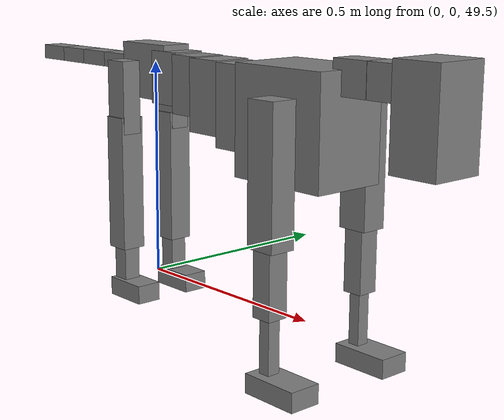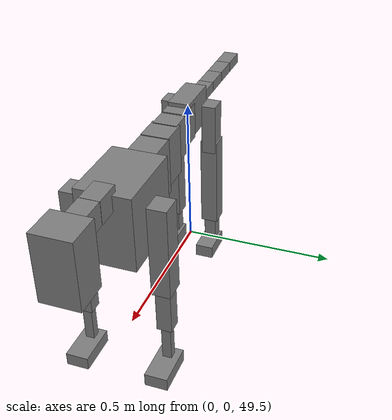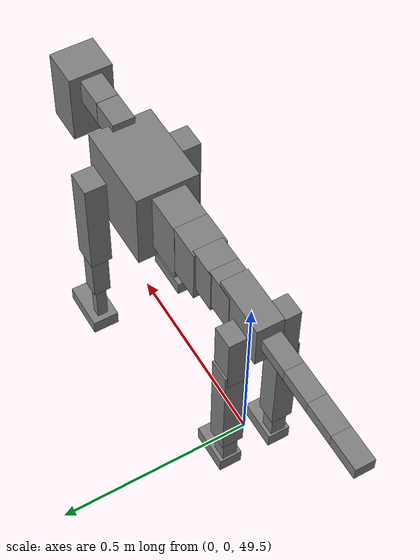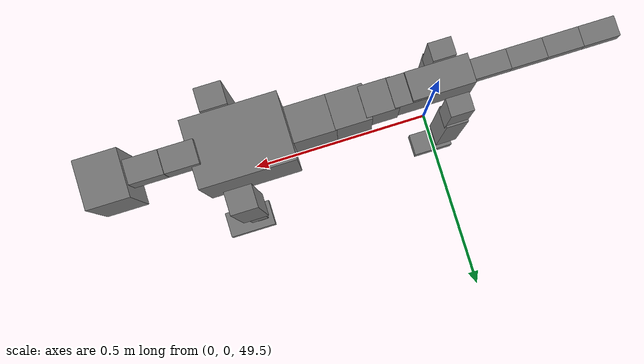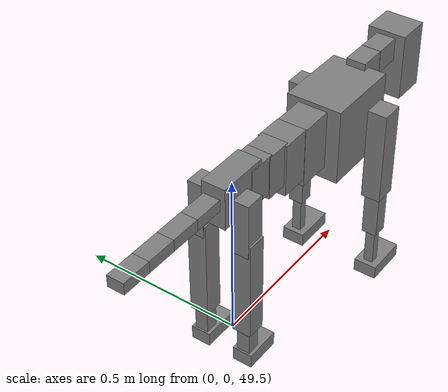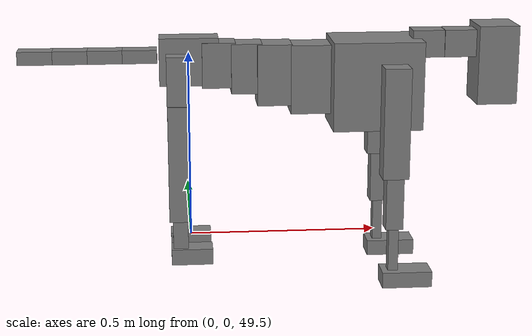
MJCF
<mujoco model="dog">

    <default>
        <joint armature="0.02" stiffness="1" damping="0.2" limited="true"/>
        <geom condim="3" friction="1 0.05 0.05" margin="0.01"/>
        <motor ctrllimited="true" ctrlrange="-1.0 1.0" forcelimited="true" gear="50"/>
    </default>

    <compiler inertiafromgeom="true" angle="radian"/>

    <option timestep="0.016" iterations="50" tolerance="1e-10" solver="Newton" jacobian="dense" cone="pyramidal"/>

    <size nconmax="20000" njmax="60000" nstack="5000000"/>
    <visual>
        <map force="0.1" zfar="30"/>
        <rgba haze="0.15 0.25 0.35 1"/>
        <quality shadowsize="2048"/>
        <global offwidth="800" offheight="800"/>
    </visual>

    <asset>
        <texture type="skybox" builtin="gradient" rgb1="0.3 0.5 0.7" rgb2="0 0 0" width="512" height="512"/>
        <texture name="texplane" type="2d" builtin="checker" rgb1=".2 .3 .4" rgb2=".1 0.15 0.2" width="512" height="512"
                 mark="cross" markrgb=".8 .8 .8"/>
        <texture name="texgeom" type="cube" builtin="flat" mark="cross" width="127" height="1278" rgb1="0.8 0.6 0.4"
                 rgb2="0.8 0.6 0.4" markrgb="1 1 1" random="0.01"/>

        <material name="matplane" reflectance="0.3" texture="texplane" texrepeat="1 1" texuniform="true"/>
        <material name="matgeom" texture="texgeom" texuniform="true" rgba="0.8 0.6 .4 1"/>
    </asset>

    <worldbody>
        <geom name="floor" pos="0 0 0" size="0 0 .25" type="plane" material="matplane" condim="3"/>

        <light directional="false" diffuse=".2 .2 .2" specular="0 0 0" pos="0 0 5" dir="0 0 -1" castshadow="false"/>
        <light mode="targetbodycom" target="torso" directional="false" diffuse=".8 .8 .8" specular="0.3 0.3 0.3"
               pos="0 0 4.0" dir="0 0 -1"/>

        <body name="root" pos="0 0 50">
            <freejoint name="root_1"/>
            <geom type="box" pos="0 0 -0.02" size="0.0774  0.0358  0.063" density="2030"/>

            <body name="spine1" pos="0.054 0 0">
                <joint name="spine1_y" axis="0 1 0" range="0 0.7" limited="true"/>
                <geom type="box" pos="0.02375 0 -0.03" size="0.04375  0.0375  0.05985" density="2030"/>

                <body name="spine2" pos="0.0612 0 0">
                    <joint name="spine2_y" axis="0 1 0" range="-0.15 0.15" limited="true"/>
                    <geom type="box" pos="0.03555  0  -0.04" size="0.04055  0.039  0.06615" density="2030"/>

                    <body name="spine3" pos="0.0730 0 0">
                        <joint name="spine3_y" axis="0 1 0" range="-0.15 0.15" limited="true"/>
                        <geom type="box" pos="0.03555  0  -0.057" size="0.04555  0.0445  0.081" density="2030"/>

                        <body name="spine4" pos="0.0780 0 0">
                            <joint name="spine4_y" axis="0 1 0" range="-0.15 0.15" limited="true"/>
                            <geom type="box" pos="0.05265  0  -0.07" size="0.05265  0.045  0.09135" density="2030"/>

                            <body name="torso" pos="0.1082 0 0">
                                <joint name="torso_y" axis="0 1 0" range="-0.15 0.15" limited="true"/>
                                <geom type="box" pos="0.11925  0  -0.085" size="0.11925  0.085  0.11745"
                                      density="2030"/>

                                <body name="neck1" pos="0.2160  0   0.0180">
                                    <joint name="neck1_y" axis="0 1 0" range="-1.2  -1" limited="true"/>
                                    <geom type="box" pos="0.0423  0  0" size="0.0423  0.03  0.036" density="2325"/>

                                    <body name="neck2" pos="0.0853  0  0">
                                        <joint name="neck2_y" axis="0 1 0" range="0.1  0" limited="true"/>
                                        <geom type="box" pos="0.0423  0  0" size="0.0423  0.03  0.036" density="2325"/>

                                        <body name="head" pos="0.0853  0  0">
                                            <joint name="head_y" axis="0 1 0" range="-0.3  -0.2" limited="true"/>
                                            <geom type="box" pos="0.0531  0  -0.055" size="0.0531  0.06  0.1044"
                                                  density="4030"/>

                                        </body>
                                    </body>
                                </body>

                                <body name="front_shoulder" pos="0.156  0   -0.0480">
                                    <joint name="front_shoulder_y" axis="0 1 0" range="-1 1.5" limited="true"/>
                                    <geom type="box" pos="0 0.13 -0.1201" size="0.0345  0.0295  0.1468" density="1158"/>
                                    <geom type="box" pos="0 -0.13 -0.1201" size="0.0345  0.0295  0.1468"
                                          density="1158"/>

                                    <body name="front_elbow" pos="0  0  -0.2403">
                                        <joint name="front_elbow_y" axis="0 1 0" range="-2 0" limited="true"/>
                                        <geom type="box" pos="0 0.13 -0.0829" size="0.0231  0.0236  0.0829"
                                              density="1081"/>
                                        <geom type="box" pos="0 -0.13 -0.0829" size="0.0231  0.0236  0.0829"
                                              density="1081"/>

                                        <body name="front_wrist" pos="0  0  -0.1658">
                                            <joint name="front_wrist_y" axis="0 1 0" range="-0.2 0" limited="true"/>
                                            <geom type="box" pos="0 0.13 -0.0655" size="0.0132  0.0146  0.0787"
                                                  density="1664"/>
                                            <geom type="box" pos="0 -0.13 -0.0655" size="0.0132  0.0146  0.0787"
                                                  density="1664"/>

                                            <body name="front_finger_end" pos="0  0  -0.1310">
                                                <joint name="front_finger_y" axis="0 1 0" range="-0.4 1"
                                                       limited="true"/>
                                                <geom type="box" pos="0.0361  0.13  -0.0061"
                                                      size="0.0662  0.0361  0.0211" density="1515"/>
                                                <geom type="box" pos="0.0361  -0.13  -0.0061"
                                                      size="0.0662  0.0361  0.0211" density="1515"/>

                                            </body>

                                        </body>
                                    </body>
                                </body>

                            </body>
                        </body>
                    </body>
                </body>
            </body>

            <body name="back_hip" pos="-0.03 0 -0.018">
                <joint name="back_hip_y" axis="0 1 0" range="-1.5 0.3" limited="true"/>
                <geom type="box" pos="0 0.07 -0.0612" size="0.0294  0.0230  0.0840" density="1154"/>
                <geom type="box" pos="0 -0.07 -0.0612" size="0.0294  0.0230  0.0840" density="1154"/>

                <body name="back_knee" pos="0  0  -0.1224">
                    <joint name="back_knee_y" axis="0 1 0" range="0 2.8" limited="true"/>
                    <geom type="box" pos="0 0.07 -0.1400" size="0.0288  0.0284  0.1555" density="1227"/>
                    <geom type="box" pos="0 -0.07 -0.1400" size="0.0288  0.0284  0.1555" density="1227"/>

                    <body name="back_ankle" pos="0  0  -0.2800">
                        <joint name="back_ankle_y" axis="0 1 0" range="-2.2 0" limited="true"/>
                        <geom type="box" pos="0 0.07 -0.0533" size="0.0198  0.0198  0.0646" density="1284"/>
                        <geom type="box" pos="0 -0.07 -0.0533" size="0.0198  0.0198  0.0646" density="1284"/>

                        <body name="back_toe_end" pos="0  0  -0.1067">
                            <joint name="back_toe_y" axis="0 1 0" range="-0.4 1" limited="true"/>
                            <geom type="box" pos="0.0298  0.07  -0.0063" size="0.0547  0.0298  0.0213" density="1515"/>
                            <geom type="box" pos="0.0298  -0.07  -0.0063" size="0.0547  0.0298  0.0213" density="1515"/>

                        </body>
                    </body>
                </body>
            </body>

            <body name="tail1" pos="-0.074 0 -0.006">
                <joint name="tail1_y" axis="0 1 0" range="-0.2 0.2" limited="true"/>
                <geom type="box" pos="-0.0536  0  0" size="0.045  0.025  0.0175" density="1587"/>

                <body name="tail2" pos="-0.09 0 0">
                    <joint name="tail2_y" axis="0 1 0" range="-0.2 0.2" limited="true"/>
                    <geom type="box" pos="-0.0536  0  0" size="0.045  0.025  0.0175" density="1587"/>

                    <body name="tail3" pos="-0.09 0 0">
                        <joint name="tail3_y" axis="0 1 0" range="-0.2 0.2" limited="true"/>
                        <geom type="box" pos="-0.0536  0  0" size="0.045  0.025  0.0175" density="1587"/>

                        <body name="tail4" pos="-0.09 0 0">
                            <joint name="tail4_y" axis="0 1 0" range="-0.2 0.2" limited="true"/>
                            <geom type="box" pos="-0.0536  0  0" size="0.045  0.025  0.0175" density="1587"/>

                        </body>
                    </body>
                </body>
            </body>
        </body>
    </worldbody>

    <actuator>
        <motor joint="spine1_y" forcerange="-150 150     "/>
        <motor joint="spine2_y" forcerange="-150 150     "/>
        <motor joint="spine3_y" forcerange="-150 150     "/>
        <motor joint="spine4_y" forcerange="-150 150     "/>
        <motor joint="torso_y" forcerange="-150 150     "/>
        <motor joint="neck1_y" forcerange="-100 100       "/>
        <motor joint="neck2_y" forcerange="-100 100       "/>
        <motor joint="head_y" forcerange="-150 150       "/>
        <motor joint="front_shoulder_y" forcerange="-121.17 175.46"/>
        <motor joint="front_elbow_y" forcerange="-126.71 145.14"/>
        <motor joint="front_wrist_y" forcerange="-51.09 66.10"/>
        <motor joint="front_finger_y" forcerange="-88.25 64.30"/>
        <motor joint="back_hip_y" forcerange="-253.54 253.44"/>
        <motor joint="back_knee_y" forcerange="-385.92 227.63"/>
        <motor joint="back_angle_y" forcerange="-130.39 86.90"/>
        <motor joint="back_toe_y" forcerange="-57.83 100.82"/>
        <motor joint="tail1_y" forcerange="-50 50     "/>
        <motor joint="tail2_y" forcerange="-50 50     "/>
        <motor joint="tail3_y" forcerange="-50 50     "/>
        <motor joint="tail4_y" forcerange="-50 50     "/>
    </actuator>
</mujoco>
